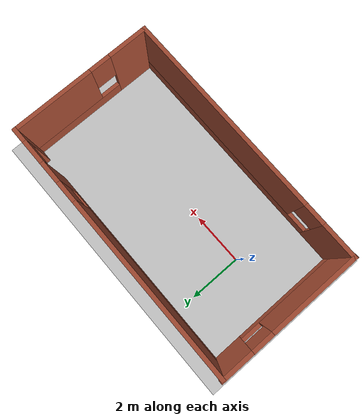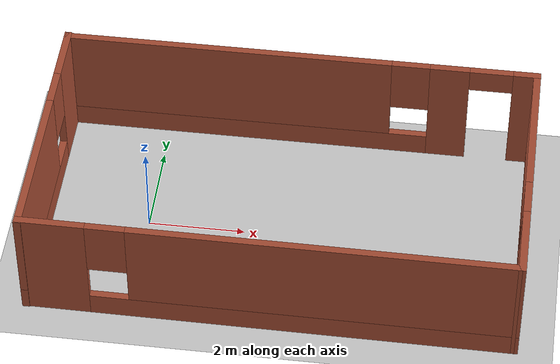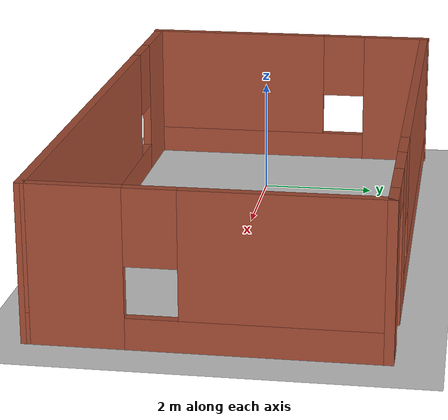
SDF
<sdf version="1.7">
 <world name="default">
  <light name="sun" type="directional">
   <pose>0 0 10 0 -0 0</pose>
   <diffuse>0.8 0.8 0.8 1</diffuse>
   <specular>0.2 0.2 0.2 1</specular>
   <attenuation>
    <range>1000</range>
    <constant>0.9</constant>
    <linear>0.01</linear>
    <quadratic>0.001</quadratic>
   </attenuation>
   <direction>-0.5 0.1 -0.9</direction>
   <spot><inner_angle>0</inner_angle><outer_angle>0</outer_angle><falloff>0</falloff></spot>
  </light>
  <model name="ground_plane">
   <static>1</static>
   <link name="link">
    <collision name="collision">
     <geometry><plane><normal>0 0 1</normal><size>100 100</size></plane></geometry>
     <surface><friction><ode><mu>100</mu><mu2>50</mu2></ode></friction></surface>
    </collision>
    <visual name="visual">
     <cast_shadows>0</cast_shadows>
     <geometry><plane><normal>0 0 1</normal><size>100 100</size></plane></geometry>
     <material>
      <script><uri>file://media/materials/scripts/gazebo.material</uri><name>Gazebo/Grey</name></script>
     </material>
    </visual>
   </link>
  </model>
  <gravity>0 0 -9.8</gravity>
  <magnetic_field>6e-06 2.3e-05 -4.2e-05</magnetic_field>
  <atmosphere type="adiabatic"/>
  <physics type="ode">
   <max_step_size>0.001</max_step_size>
   <real_time_factor>1</real_time_factor>
   <real_time_update_rate>1000</real_time_update_rate>
  </physics>
  <scene><ambient>0.4 0.4 0.4 1</ambient><background>0.7 0.7 0.7 1</background><shadows>1</shadows></scene>
  <audio><device>default</device></audio>
  <spherical_coordinates>
   <surface_model>EARTH_WGS84</surface_model>
   <latitude_deg>0</latitude_deg>
   <longitude_deg>0</longitude_deg>
   <elevation>0</elevation>
   <heading_deg>0</heading_deg>
  </spherical_coordinates>
  <model name="Untitled">
   <pose>2.83168 -0.07533 0 0 -0 0</pose>
   <link name="Wall_2">
    <pose>-4.93926 0.266267 0 0 -0 -1.5708</pose>
    <visual name="Wall_2_Visual_0">
     <pose>-2.11755 0 1.25 0 -0 0</pose>
     <geometry><box><size>1.2649 0.15 2.5</size></box></geometry>
     <material>
      <script><uri>file://media/materials/scripts/gazebo.material</uri><name>Gazebo/Bricks</name></script>
      <ambient>1 1 1 1</ambient>
     </material>
     <meta><layer>0</layer></meta>
    </visual>
    <collision name="Wall_2_Collision_0">
     <geometry><box><size>1.2649 0.15 2.5</size></box></geometry>
     <pose>-2.11755 0 1.25 0 -0 0</pose>
    </collision>
    <visual name="Wall_2_Visual_1">
     <pose>0.632453 0 0.25 0 -0 0</pose>
     <geometry><box><size>4.2351 0.15 0.5</size></box></geometry>
     <material>
      <script><uri>file://media/materials/scripts/gazebo.material</uri><name>Gazebo/Bricks</name></script>
      <ambient>1 1 1 1</ambient>
     </material>
     <meta><layer>0</layer></meta>
    </visual>
    <collision name="Wall_2_Collision_1">
     <geometry><box><size>4.2351 0.15 0.5</size></box></geometry>
     <pose>0.632453 0 0.25 0 -0 0</pose>
    </collision>
    <visual name="Wall_2_Visual_2">
     <pose>1.03245 0 1.5 0 -0 0</pose>
     <geometry><box><size>3.4351 0.15 2</size></box></geometry>
     <material>
      <script><uri>file://media/materials/scripts/gazebo.material</uri><name>Gazebo/Bricks</name></script>
      <ambient>1 1 1 1</ambient>
     </material>
     <meta><layer>0</layer></meta>
    </visual>
    <collision name="Wall_2_Collision_2">
     <geometry><box><size>3.4351 0.15 2</size></box></geometry>
     <pose>1.03245 0 1.5 0 -0 0</pose>
    </collision>
    <visual name="Wall_2_Visual_3">
     <pose>-1.08509 0 1.9 0 -0 0</pose>
     <geometry><box><size>0.8 0.15 1.2</size></box></geometry>
     <material>
      <script><uri>file://media/materials/scripts/gazebo.material</uri><name>Gazebo/Bricks</name></script>
      <ambient>1 1 1 1</ambient>
     </material>
     <meta><layer>0</layer></meta>
    </visual>
    <collision name="Wall_2_Collision_3">
     <geometry><box><size>0.8 0.15 1.2</size></box></geometry>
     <pose>-1.08509 0 1.9 0 -0 0</pose>
    </collision>
   </link>
   <link name="Wall_3">
    <pose>0 -2.41197 0 0 -0 -0.004196</pose>
    <visual name="Wall_3_Visual_0">
     <pose>-4.31221 0 1.25 0 -0 0</pose>
     <geometry><box><size>1.40408 0.15 2.5</size></box></geometry>
     <material>
      <script><uri>file://media/materials/scripts/gazebo.material</uri><name>Gazebo/Bricks</name></script>
      <ambient>1 1 1 1</ambient>
     </material>
     <meta><layer>0</layer></meta>
    </visual>
    <collision name="Wall_3_Collision_0">
     <geometry><box><size>1.40408 0.15 2.5</size></box></geometry>
     <pose>-4.31221 0 1.25 0 -0 0</pose>
    </collision>
    <visual name="Wall_3_Visual_1">
     <pose>0.702042 0 0.25 0 -0 0</pose>
     <geometry><box><size>8.62443 0.15 0.5</size></box></geometry>
     <material>
      <script><uri>file://media/materials/scripts/gazebo.material</uri><name>Gazebo/Bricks</name></script>
      <ambient>1 1 1 1</ambient>
     </material>
     <meta><layer>0</layer></meta>
    </visual>
    <collision name="Wall_3_Collision_1">
     <geometry><box><size>8.62443 0.15 0.5</size></box></geometry>
     <pose>0.702042 0 0.25 0 -0 0</pose>
    </collision>
    <visual name="Wall_3_Visual_2">
     <pose>1.10204 0 1.5 0 -0 0</pose>
     <geometry><box><size>7.82443 0.15 2</size></box></geometry>
     <material>
      <script><uri>file://media/materials/scripts/gazebo.material</uri><name>Gazebo/Bricks</name></script>
      <ambient>1 1 1 1</ambient>
     </material>
     <meta><layer>0</layer></meta>
    </visual>
    <collision name="Wall_3_Collision_2">
     <geometry><box><size>7.82443 0.15 2</size></box></geometry>
     <pose>1.10204 0 1.5 0 -0 0</pose>
    </collision>
    <visual name="Wall_3_Visual_3">
     <pose>-3.21017 0 1.9 0 -0 0</pose>
     <geometry><box><size>0.8 0.15 1.2</size></box></geometry>
     <material>
      <script><uri>file://media/materials/scripts/gazebo.material</uri><name>Gazebo/Bricks</name></script>
      <ambient>1 1 1 1</ambient>
     </material>
     <meta><layer>0</layer></meta>
    </visual>
    <collision name="Wall_3_Collision_3">
     <geometry><box><size>0.8 0.15 1.2</size></box></geometry>
     <pose>-3.21017 0 1.9 0 -0 0</pose>
    </collision>
   </link>
   <link name="Wall_4">
    <pose>4.93926 0.242306 0 0 -0 1.5708</pose>
    <visual name="Wall_4_Visual_0">
     <pose>-1.96494 0 1.25 0 -0 0</pose>
     <geometry><box><size>1.57013 0.15 2.5</size></box></geometry>
     <material>
      <script><uri>file://media/materials/scripts/gazebo.material</uri><name>Gazebo/Bricks</name></script>
      <ambient>1 1 1 1</ambient>
     </material>
     <meta><layer>0</layer></meta>
    </visual>
    <collision name="Wall_4_Collision_0">
     <geometry><box><size>1.57013 0.15 2.5</size></box></geometry>
     <pose>-1.96494 0 1.25 0 -0 0</pose>
    </collision>
    <visual name="Wall_4_Visual_1">
     <pose>0.785064 0 0.25 0 -0 0</pose>
     <geometry><box><size>3.92987 0.15 0.5</size></box></geometry>
     <material>
      <script><uri>file://media/materials/scripts/gazebo.material</uri><name>Gazebo/Bricks</name></script>
      <ambient>1 1 1 1</ambient>
     </material>
     <meta><layer>0</layer></meta>
    </visual>
    <collision name="Wall_4_Collision_1">
     <geometry><box><size>3.92987 0.15 0.5</size></box></geometry>
     <pose>0.785064 0 0.25 0 -0 0</pose>
    </collision>
    <visual name="Wall_4_Visual_2">
     <pose>1.18506 0 1.5 0 -0 0</pose>
     <geometry><box><size>3.12987 0.15 2</size></box></geometry>
     <material>
      <script><uri>file://media/materials/scripts/gazebo.material</uri><name>Gazebo/Bricks</name></script>
      <ambient>1 1 1 1</ambient>
     </material>
     <meta><layer>0</layer></meta>
    </visual>
    <collision name="Wall_4_Collision_2">
     <geometry><box><size>3.12987 0.15 2</size></box></geometry>
     <pose>1.18506 0 1.5 0 -0 0</pose>
    </collision>
    <visual name="Wall_4_Visual_3">
     <pose>-0.779871 0 1.9 0 -0 0</pose>
     <geometry><box><size>0.8 0.15 1.2</size></box></geometry>
     <material>
      <script><uri>file://media/materials/scripts/gazebo.material</uri><name>Gazebo/Bricks</name></script>
      <ambient>1 1 1 1</ambient>
     </material>
     <meta><layer>0</layer></meta>
    </visual>
    <collision name="Wall_4_Collision_3">
     <geometry><box><size>0.8 0.15 1.2</size></box></geometry>
     <pose>-0.779871 0 1.9 0 -0 0</pose>
    </collision>
   </link>
   <link name="Wall_5">
    <pose>0.014255 2.91731 0 0 -0 3.14159</pose>
    <visual name="Wall_5_Visual_0">
     <pose>-4.71555 0 1.25 0 -0 0</pose>
     <geometry><box><size>0.568904 0.15 2.5</size></box></geometry>
     <material>
      <script><uri>file://media/materials/scripts/gazebo.material</uri><name>Gazebo/Bricks</name></script>
      <ambient>1 1 1 1</ambient>
     </material>
     <meta><layer>0</layer></meta>
    </visual>
    <collision name="Wall_5_Collision_0">
     <geometry><box><size>0.568904 0.15 2.5</size></box></geometry>
     <pose>-4.71555 0 1.25 0 -0 0</pose>
    </collision>
    <visual name="Wall_5_Visual_1">
     <pose>-3.11657 0 1.25 0 -0 0</pose>
     <geometry><box><size>0.829046 0.15 2.5</size></box></geometry>
     <material>
      <script><uri>file://media/materials/scripts/gazebo.material</uri><name>Gazebo/Bricks</name></script>
      <ambient>1 1 1 1</ambient>
     </material>
     <meta><layer>0</layer></meta>
    </visual>
    <collision name="Wall_5_Collision_1">
     <geometry><box><size>0.829046 0.15 2.5</size></box></geometry>
     <pose>-3.11657 0 1.25 0 -0 0</pose>
    </collision>
    <visual name="Wall_5_Visual_2">
     <pose>1.14898 0 0.25 0 -0 0</pose>
     <geometry><box><size>7.70205 0.15 0.5</size></box></geometry>
     <material>
      <script><uri>file://media/materials/scripts/gazebo.material</uri><name>Gazebo/Bricks</name></script>
      <ambient>1 1 1 1</ambient>
     </material>
     <meta><layer>0</layer></meta>
    </visual>
    <collision name="Wall_5_Collision_2">
     <geometry><box><size>7.70205 0.15 0.5</size></box></geometry>
     <pose>1.14898 0 0.25 0 -0 0</pose>
    </collision>
    <visual name="Wall_5_Visual_3">
     <pose>1.54897 0 1.5 0 -0 0</pose>
     <geometry><box><size>6.90205 0.15 2</size></box></geometry>
     <material>
      <script><uri>file://media/materials/scripts/gazebo.material</uri><name>Gazebo/Bricks</name></script>
      <ambient>1 1 1 1</ambient>
     </material>
     <meta><layer>0</layer></meta>
    </visual>
    <collision name="Wall_5_Collision_3">
     <geometry><box><size>6.90205 0.15 2</size></box></geometry>
     <pose>1.54897 0 1.5 0 -0 0</pose>
    </collision>
    <visual name="Wall_5_Visual_4">
     <pose>-2.30205 0 1.9 0 -0 0</pose>
     <geometry><box><size>0.8 0.15 1.2</size></box></geometry>
     <material>
      <script><uri>file://media/materials/scripts/gazebo.material</uri><name>Gazebo/Bricks</name></script>
      <ambient>1 1 1 1</ambient>
     </material>
     <meta><layer>0</layer></meta>
    </visual>
    <collision name="Wall_5_Collision_4">
     <geometry><box><size>0.8 0.15 1.2</size></box></geometry>
     <pose>-2.30205 0 1.9 0 -0 0</pose>
    </collision>
    <visual name="Wall_5_Visual_5">
     <pose>-3.9811 0 2.25 0 -0 0</pose>
     <geometry><box><size>0.9 0.15 0.5</size></box></geometry>
     <material>
      <script><uri>file://media/materials/scripts/gazebo.material</uri><name>Gazebo/Bricks</name></script>
      <ambient>1 1 1 1</ambient>
     </material>
     <meta><layer>0</layer></meta>
    </visual>
    <collision name="Wall_5_Collision_5">
     <geometry><box><size>0.9 0.15 0.5</size></box></geometry>
     <pose>-3.9811 0 2.25 0 -0 0</pose>
    </collision>
   </link>
   <static>1</static>
  </model>
 </world>
</sdf>
